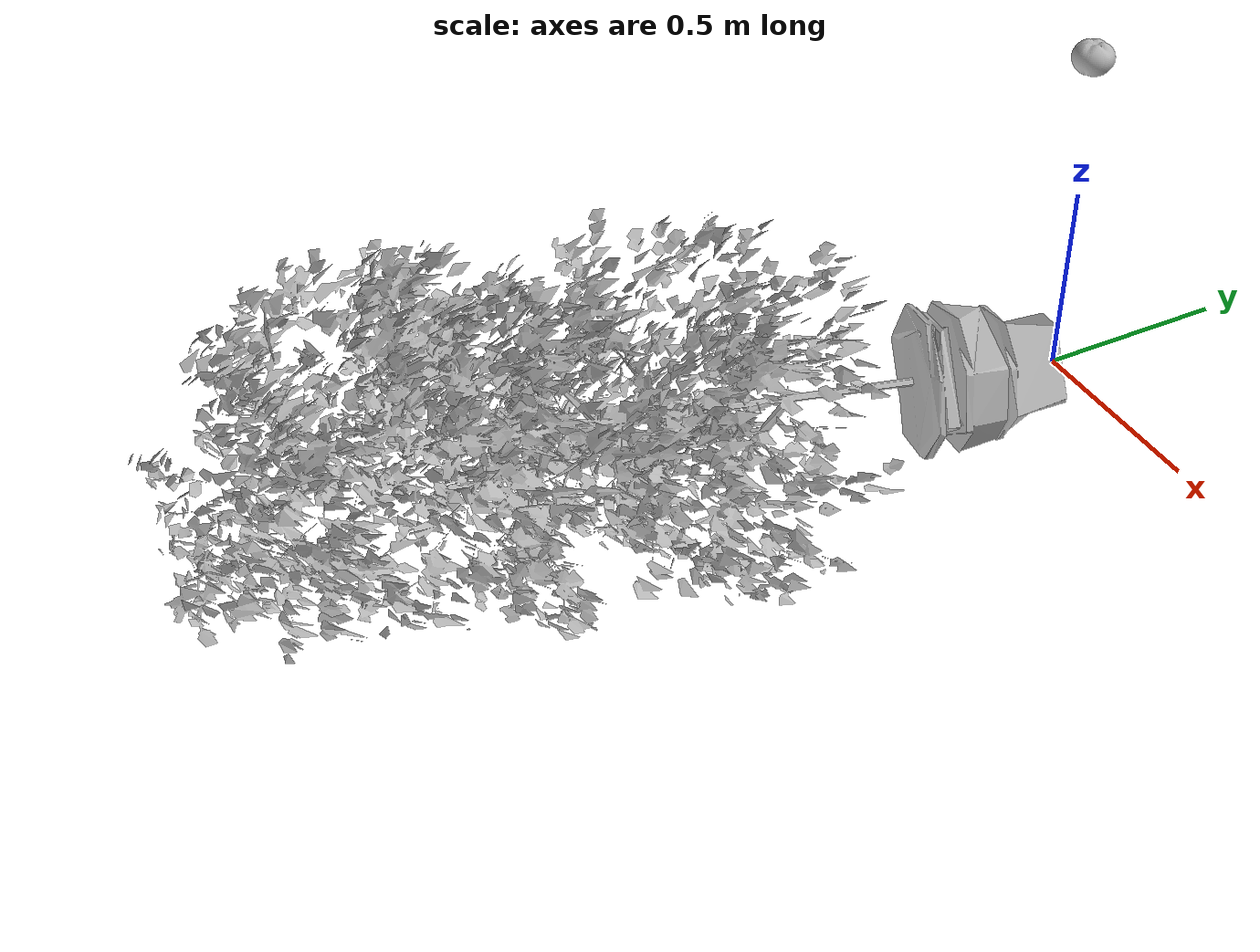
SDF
<?xml version="1.0"?>
<sdf version="1.6">
    <model name="plant_4">
    	<static>false</static>
       <link name="link_0_1">
        <pose>0 0 0 0 0 0</pose>
        <inertial>
          <!-- This mass is unrelated, inertias default to 1, they seem unrelated-->
          <mass>30</mass>
        </inertial>
         <visual name="visual">
          <pose>0 0 0 1.57 0 -0.277507351</pose>
          <geometry>
            <mesh><uri>model://plant/meshes/plant.obj</uri></mesh>
          </geometry>
        </visual>
        <collision name="collision">
          <pose>0 0 0.25 0 0 0</pose>
          <geometry>
            <box><size>0.5 0.5 0.5</size></box>
          </geometry>
        </collision>
      </link>
      <model name="tomato">
      <pose>-0.297 0.244 0.669 0 0 0</pose>
      <link name="t_link">
        <pose>-0 0 0 0 0 0</pose>
        <inertial>
          <!-- Try with different masses and figure out the force relation, currently it breaks at 98N -->
          <mass>0.1</mass>
        </inertial>
        <collision name="collision">
          <geometry>
            <sphere><radius>0.05</radius></sphere>
          </geometry>
        </collision>
        <visual name="visual">
          <geometry>
            <mesh><uri>model://tomato/meshes/tomato.obj</uri></mesh>
          </geometry>
        </visual>
        <!-- Nested model was also tried but there is some GUI bug that does not allow me to apply force to the link in case of nested model, see that approach in bak.sdf -->
      </link>
    </model>
          <joint name="joint_0_0" type="revolute">
      <parent>link_0_1</parent>
      <!-- The parent link is world in the examples but gazebo crashes on detach in that case! -->
      <child>tomato::t_link</child>
      <axis>
        <xyz>0 0 1</xyz>
        <limit>
          <lower>0.0</lower>
          <upper>0.0</upper>
        </limit>
        <use_parent_model_frame>true</use_parent_model_frame>
      </axis>
      <physics>
        <ode>
          <erp>1</erp>
          <cfm>1</cfm>
        </ode>
      </physics>
      <sensor name="force_torque" type="force_torque">
        <always_on>true</always_on>
        <update_rate>1</update_rate>
        <plugin name="breakable_0_0" filename="libBreakableJointPlugin.so">
          <!-- Breaking force of 6 with mass 0.1 crashed Gazebo at launch -->
          <breaking_force_N>10</breaking_force_N>
        </plugin>
      </sensor>
    </joint>
  </model>
</sdf>
